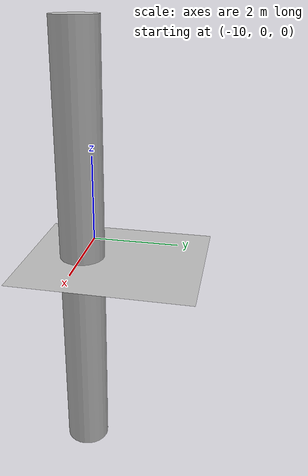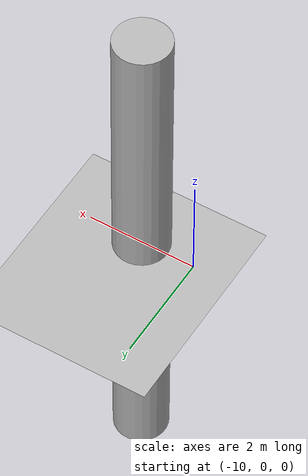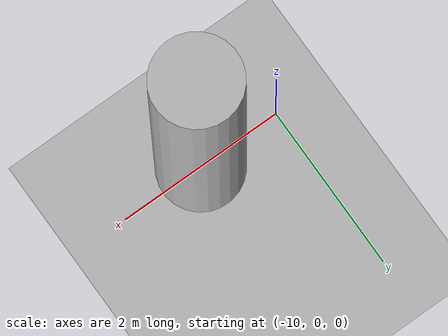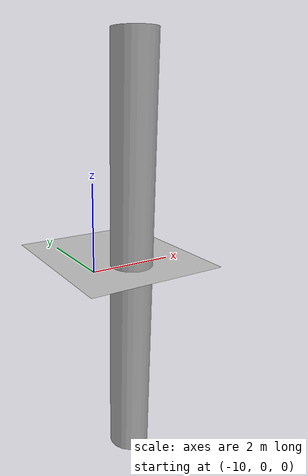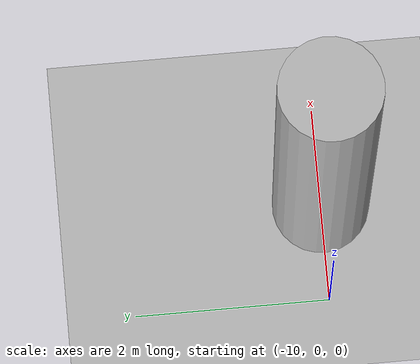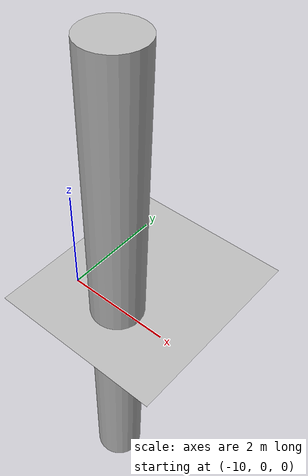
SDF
<?xml version="1.0"?>
<sdf version="1.4">
  <world name="default">
    <scene>
      <shadows>false</shadows>
    </scene>
    <model name="forest">
      <static>true</static>
      <link name="tree0">
        <pose>-9 0.0 0 0 0 3.2239534892396104 </pose>
        <visual name="visual">
          <material>
            <script>
              <uri>model://tree_simple/scripts</uri>
              <uri>model://tree_simple/materials/textures</uri>
            </script>
          </material>
          <geometry>
            <cylinder>
              <radius>0.5</radius>
              <length>10</length>
            </cylinder>
          </geometry>
        </visual>
        <collision name="collision">
          <geometry>
            <cylinder>
              <radius>0.17910797089570632</radius>
              <length>10</length>
            </cylinder>
          </geometry>
          <max_contacts>0</max_contacts>
        </collision>
      </link>
    </model>
    <!-- Plugins -->
    <plugin name="mrs_gazebo_link_attacher_plugin" filename="libMrsGazeboCommonResources_StaticTransformRepublisher.so"/>
    <plugin name="mrs_gazebo_rviz_cam_synchronizer" filename="libMrsGazeboCommonResources_RvizCameraSynchronizer.so"/>
    <!-- Physics -->
    <physics name="default_physics" default="0" type="ode">
      <max_step_size>0.004</max_step_size>
      <real_time_factor>1</real_time_factor>
      <real_time_update_rate>250</real_time_update_rate>
      <gravity>0 0 -9.8066</gravity>
      <magnetic_field>6e-06 2.3e-05 -4.2e-05</magnetic_field>
      <ode>
        <solver>
          <type>quick</type>
          <iters>10</iters>
          <sor>1.3</sor>
          <use_dynamic_moi_rescaling>0</use_dynamic_moi_rescaling>
        </solver>
        <constraints>
          <cfm>0</cfm>
          <erp>0.2</erp>
          <contact_max_correcting_vel>1000</contact_max_correcting_vel>
          <contact_surface_layer>0.001</contact_surface_layer>
        </constraints>
      </ode>
    </physics>
    <!-- Coordinate System -->
    <spherical_coordinates>
      <surface_model>EARTH_WGS84</surface_model>
      <latitude_deg>47.397743</latitude_deg>
      <longitude_deg>8.545594</longitude_deg>
      <elevation>0.0</elevation>
      <heading_deg>0</heading_deg>
    </spherical_coordinates>
    <!-- Ground Plane -->
    <model name="ground_plane">
      <static>true</static>
      <link name="link">
        <collision name="collision">
          <pose>0 0 0 0 0 0</pose>
          <geometry>
            <plane>
              <normal>0 0 1<size>250 250</size></normal>
            </plane>
          </geometry>
          <surface>
            <friction>
              <ode>
                <mu>1</mu>
                <mu2>1</mu2>
              </ode>
            </friction>
          </surface>
        </collision>
        <visual name="grass">
          <pose>0 0 0 0 0 0</pose>
          <cast_shadows>false</cast_shadows>
          <geometry>
            <mesh>
              <uri>/opt/ros/noetic/share/mrs_gazebo_common_resources/models/grass_plane/meshes/grass_plane.dae</uri>
            </mesh>
          </geometry>
        </visual>
      </link>
    </model>
    <!-- Sun -->
    <light name="sun" type="directional">
      <pose frame="">0 0 1000 0.4 0.2 0</pose>
      <specular>0.6 0.6 0.6 1</specular>
      <direction>0.1 0.1 -0.9</direction>
      <attenuation>
        <range>20</range>
        <constant>0.5</constant>
        <linear>0.01</linear>
        <quadratic>0.001</quadratic>
      </attenuation>
      <cast_shadows>1</cast_shadows>
    </light>
  </world>
</sdf>
